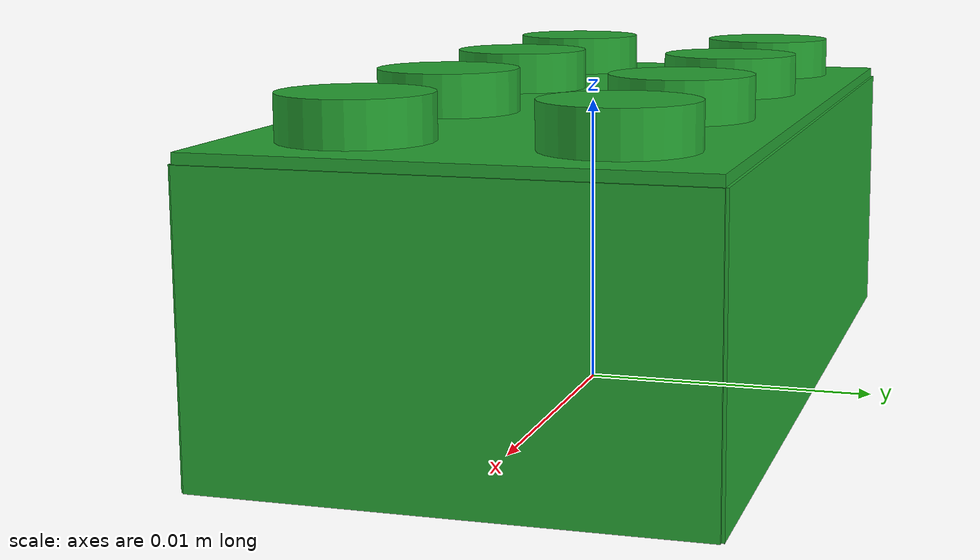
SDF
<?xml version='1.0'?>
<sdf version='1.6'>
  <model name='Green_Lego_Block'>
    <link name='link_0'>
      <pose frame=''>0 0 0 0 -0 0</pose>
      <inertial>
        <mass>0.0232</mass>
        <inertia>
          <ixx>0.166667</ixx>
          <ixy>0</ixy>
          <ixz>0</ixz>
          <iyy>0.166667</iyy>
          <iyz>0</iyz>
          <izz>0.166667</izz>
        </inertia>
        <pose frame=''>0 0 0 0 -0 0</pose>
      </inertial>
      <gravity>1</gravity>
      <self_collide>0</self_collide>
      <kinematic>0</kinematic>
      <visual name='visual'>
        <pose frame=''>0 0 0.00645 0 -0 0</pose>
        <geometry>
          <box>
            <size>0.0008 0.0158 0.0063</size>
          </box>
        </geometry>
        <material>
          <script>
            <uri>file://media/materials/scripts/gazebo.material</uri>
            <name>Gazebo/Green</name>
          </script>
        </material>
        <transparency>0</transparency>
        <cast_shadows>1</cast_shadows>
      </visual>
      <visual name='visual_4'>
        <pose frame=''>-0.0159 0 0.0048 0 -0 0</pose>
        <geometry>
          <box>
            <size>0.0002 0.0158 0.0096</size>
          </box>
        </geometry>
        <material>
          <script>
            <uri>file://media/materials/scripts/gazebo.material</uri>
            <name>Gazebo/Green</name>
          </script>
        </material>
        <transparency>0</transparency>
        <cast_shadows>1</cast_shadows>
      </visual>
      <visual name='visual_5'>
        <pose frame=''>0.0159 0 0.0048 0 -0 0</pose>
        <geometry>
          <box>
            <size>0.0002 0.0158 0.0096</size>
          </box>
        </geometry>
        <material>
          <script>
            <uri>file://media/materials/scripts/gazebo.material</uri>
            <name>Gazebo/Green</name>
          </script>
        </material>
        <transparency>0</transparency>
        <cast_shadows>1</cast_shadows>
      </visual>
      <visual name='ModelPreview_0::link_0::visual_1'>
        <pose frame=''>0 0 0.0048 0 -0 0</pose>
        <geometry>
          <cylinder>
            <radius>0.003255</radius>
            <length>0.0063</length>
          </cylinder>
        </geometry>
        <material>
          <script>
            <uri>file://media/materials/scripts/gazebo.material</uri>
            <name>Gazebo/Green</name>
          </script>
          <shader type='vertex'>
            <normal_map>__default__</normal_map>
          </shader>
        </material>
        <transparency>0</transparency>
        <cast_shadows>1</cast_shadows>
      </visual>
      <visual name='ModelPreview_0::link_0::visual_2'>
        <pose frame=''>0.008 0 0.0048 0 -0 0</pose>
        <geometry>
          <cylinder>
            <radius>0.00325</radius>
            <length>0.0096</length>
          </cylinder>
        </geometry>
        <material>
          <script>
            <uri>file://media/materials/scripts/gazebo.material</uri>
            <name>Gazebo/Green</name>
          </script>
        </material>
        <transparency>0</transparency>
        <cast_shadows>1</cast_shadows>
      </visual>
      <visual name='ModelPreview_0::link_0::visual_14'>
        <pose frame=''>0.0041 -0.0039 0.0105 0 -0 0</pose>
        <geometry>
          <cylinder>
            <radius>0.0024</radius>
            <length>0.0018</length>
          </cylinder>
        </geometry>
        <material>
          <script>
            <uri>file://media/materials/scripts/gazebo.material</uri>
            <name>Gazebo/Green</name>
          </script>
        </material>
        <transparency>0</transparency>
        <cast_shadows>1</cast_shadows>
      </visual>
      <visual name='ModelPreview_0::link_0::visual_3'>
        <pose frame=''>-0.008 0 0.0048 0 -0 0</pose>
        <geometry>
          <cylinder>
            <radius>0.00325</radius>
            <length>0.0096</length>
          </cylinder>
        </geometry>
        <material>
          <script>
            <uri>file://media/materials/scripts/gazebo.material</uri>
            <name>Gazebo/Green</name>
          </script>
        </material>
        <transparency>0</transparency>
        <cast_shadows>1</cast_shadows>
      </visual>
      <visual name='ModelPreview_0::link_0::visual_6'>
        <pose frame=''>0 0.0079 0.0048 0 -0 0</pose>
        <geometry>
          <box>
            <size>0.0318 0.0002 0.0096</size>
          </box>
        </geometry>
        <material>
          <script>
            <uri>file://media/materials/scripts/gazebo.material</uri>
            <name>Gazebo/Green</name>
          </script>
        </material>
        <transparency>0</transparency>
        <cast_shadows>1</cast_shadows>
      </visual>
      <visual name='ModelPreview_0::link_0::visual_6_bis'>
        <pose frame=''>0 -0.0079 0.0048 0 -0 0</pose>
        <geometry>
          <box>
            <size>0.0318 0.0002 0.0096</size>
          </box>
        </geometry>
        <material>
          <script>
            <uri>file://media/materials/scripts/gazebo.material</uri>
            <name>Gazebo/Green</name>
          </script>
        </material>
        <transparency>0</transparency>
        <cast_shadows>1</cast_shadows>
      </visual>
      <visual name='ModelPreview_0::link_0::visual_7'>
        <pose frame=''>0 0 0.0091 0 -0 0</pose>
        <geometry>
          <box>
            <size>0.0318 0.0158 0.0017</size>
          </box>
        </geometry>
        <material>
          <script>
            <uri>file://media/materials/scripts/gazebo.material</uri>
            <name>Gazebo/Green</name>
          </script>
        </material>
        <transparency>0</transparency>
        <cast_shadows>1</cast_shadows>
      </visual>
      <visual name='ModelPreview_0::link_0::visual_8'>
        <pose frame=''>0.0121 0.0041 0.0105 0 -0 0</pose>
        <geometry>
          <cylinder>
            <radius>0.0024</radius>
            <length>0.0018</length>
          </cylinder>
        </geometry>
        <material>
          <script>
            <uri>file://media/materials/scripts/gazebo.material</uri>
            <name>Gazebo/Green</name>
          </script>
        </material>
        <transparency>0</transparency>
        <cast_shadows>1</cast_shadows>
      </visual>
      <visual name='ModelPreview_0::link_0::visual_9'>
        <pose frame=''>-0.0121 0.0041 0.0105 0 -0 0</pose>
        <geometry>
          <cylinder>
            <radius>0.0024</radius>
            <length>0.0018</length>
          </cylinder>
        </geometry>
        <material>
          <script>
            <uri>file://media/materials/scripts/gazebo.material</uri>
            <name>Gazebo/Green</name>
          </script>
        </material>
        <transparency>0</transparency>
        <cast_shadows>1</cast_shadows>
      </visual>
      <visual name='ModelPreview_0::link_0::visual_11'>
        <pose frame=''>0.0041 0.0041 0.0105 0 -0 0</pose>
        <geometry>
          <cylinder>
            <radius>0.0024</radius>
            <length>0.0018</length>
          </cylinder>
        </geometry>
        <material>
          <script>
            <uri>file://media/materials/scripts/gazebo.material</uri>
            <name>Gazebo/Green</name>
          </script>
        </material>
        <transparency>0</transparency>
        <cast_shadows>1</cast_shadows>
      </visual>
      <visual name='ModelPreview_0::link_0::visual_10'>
        <pose frame=''>-0.0041 0.0041 0.0105 0 -0 0</pose>
        <geometry>
          <cylinder>
            <radius>0.0024</radius>
            <length>0.0018</length>
          </cylinder>
        </geometry>
        <material>
          <script>
            <uri>file://media/materials/scripts/gazebo.material</uri>
            <name>Gazebo/Green</name>
          </script>
        </material>
        <transparency>0</transparency>
        <cast_shadows>1</cast_shadows>
      </visual>
      <visual name='ModelPreview_0::link_0::visual_12'>
        <pose frame=''>0.0121 -0.0039 0.0105 0 -0 0</pose>
        <geometry>
          <cylinder>
            <radius>0.0024</radius>
            <length>0.0018</length>
          </cylinder>
        </geometry>
        <material>
          <script>
            <uri>file://media/materials/scripts/gazebo.material</uri>
            <name>Gazebo/Green</name>
          </script>
        </material>
        <transparency>0</transparency>
        <cast_shadows>1</cast_shadows>
      </visual>
      <visual name='ModelPreview_0::link_0::visual_13'>
        <pose frame=''>-0.0121 -0.0039 0.0105 0 -0 0</pose>
        <geometry>
          <cylinder>
            <radius>0.0024</radius>
            <length>0.0018</length>
          </cylinder>
        </geometry>
        <material>
          <script>
            <uri>file://media/materials/scripts/gazebo.material</uri>
            <name>Gazebo/Green</name>
          </script>
        </material>
        <transparency>0</transparency>
        <cast_shadows>1</cast_shadows>
      </visual>
      <visual name='ModelPreview_0::link_0::visual_15'>
        <pose frame=''>-0.0041 -0.0039 0.0105 0 -0 0</pose>
        <geometry>
          <cylinder>
            <radius>0.0024</radius>
            <length>0.0018</length>
          </cylinder>
        </geometry>
        <material>
          <script>
            <uri>file://media/materials/scripts/gazebo.material</uri>
            <name>Gazebo/Green</name>
          </script>
        </material>
        <transparency>0</transparency>
        <cast_shadows>1</cast_shadows>
      </visual>
      <collision name='collision'>
        <laser_retro>0</laser_retro>
        <max_contacts>10</max_contacts>
        <pose frame=''>0 0 0.0048 0 -0 0</pose>
        <geometry>
          <box>
            <size>0.0318 0.0158 0.0096</size>
          </box>
        </geometry>
        <surface>
          <friction>
            <ode>
              <mu>1</mu>
              <mu2>1</mu2>
              <fdir1>0 0 0</fdir1>
              <slip1>0</slip1>
              <slip2>0</slip2>
            </ode>
            <torsional>
              <coefficient>1</coefficient>
              <patch_radius>0</patch_radius>
              <surface_radius>0</surface_radius>
              <use_patch_radius>1</use_patch_radius>
              <ode>
                <slip>0</slip>
              </ode>
            </torsional>
          </friction>
          <bounce>
            <restitution_coefficient>0</restitution_coefficient>
            <threshold>1e+06</threshold>
          </bounce>
          <contact>
            <collide_without_contact>0</collide_without_contact>
            <collide_without_contact_bitmask>1</collide_without_contact_bitmask>
            <collide_bitmask>1</collide_bitmask>
            <ode>
              <soft_cfm>0</soft_cfm>
              <soft_erp>0.2</soft_erp>
              <kp>1e+13</kp>
              <kd>1</kd>
              <max_vel>0.01</max_vel>
              <min_depth>0</min_depth>
            </ode>
            <bullet>
              <split_impulse>1</split_impulse>
              <split_impulse_penetration_threshold>-0.01</split_impulse_penetration_threshold>
              <soft_cfm>0</soft_cfm>
              <soft_erp>0.2</soft_erp>
              <kp>1e+13</kp>
              <kd>1</kd>
            </bullet>
          </contact>
        </surface>
      </collision>
    </link>
    <static>0</static>
    <allow_auto_disable>1</allow_auto_disable>
  </model>
</sdf>
